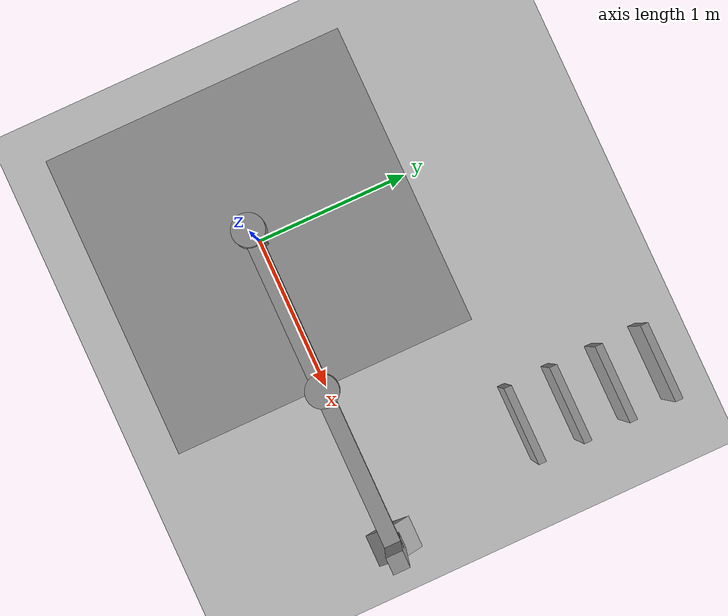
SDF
<sdf version="1.5">
 <world name="default">
  <model name="ground_plane">
   <static>1</static>
   <link name="link">
    <collision name="collision">
     <geometry><plane><normal>0 0 1</normal><size>100 100</size></plane></geometry>
     <surface><friction><ode><mu>100</mu><mu2>50</mu2></ode></friction></surface>
    </collision>
    <visual name="visual">
     <cast_shadows>0</cast_shadows>
     <geometry><plane><normal>0 0 1</normal><size>100 100</size></plane></geometry>
     <material>
      <script><uri>file://media/materials/scripts/gazebo.material</uri><name>Gazebo/Grey</name></script>
     </material>
    </visual>
   </link>
  </model>
  <model name="domino050_0">
   <link name="link">
    <pose>0 0 -0.25 0 -0 0</pose>
    <inertial>
     <mass>0.5</mass>
     <inertia>
      <ixx>0.166667</ixx>
      <ixy>0</ixy>
      <ixz>0</ixz>
      <iyy>0.166667</iyy>
      <iyz>0</iyz>
      <izz>0.166667</izz>
     </inertia>
    </inertial>
    <visual name="visual">
     <geometry><box><size>0.5 0.05 0.5</size></box></geometry>
     <material>
      <script><name>Gazebo/Grey</name><uri>file://media/materials/scripts/gazebo.material</uri></script>
      <shader type="pixel"><normal_map>__default__</normal_map></shader>
      <ambient>0.3 0.3 0.3 1</ambient>
      <diffuse>0.7 0.7 0.7 1</diffuse>
      <specular>0.01 0.01 0.01 1</specular>
      <emissive>0 0 0 1</emissive>
     </material>
    </visual>
    <collision name="collision">
     <geometry><box><size>0.5 0.05 0.5</size></box></geometry>
     <surface>
      <friction><ode><mu>1</mu><mu2>1</mu2><fdir1>0 0 0</fdir1><slip1>0</slip1><slip2>0</slip2></ode></friction>
      <bounce><restitution_coefficient>0</restitution_coefficient><threshold>1e+06</threshold></bounce>
      <contact>
       <collide_without_contact>0</collide_without_contact>
       <collide_without_contact_bitmask>1</collide_without_contact_bitmask>
       <collide_bitmask>1</collide_bitmask>
       <ode>
        <soft_cfm>0</soft_cfm>
        <soft_erp>0.2</soft_erp>
        <kp>1e+13</kp>
        <kd>1</kd>
        <max_vel>0.01</max_vel>
        <min_depth>0</min_depth>
       </ode>
       <bullet>
        <split_impulse>1</split_impulse>
        <split_impulse_penetration_threshold>-0.01</split_impulse_penetration_threshold>
        <soft_cfm>0</soft_cfm>
        <soft_erp>0.2</soft_erp>
        <kp>1e+13</kp>
        <kd>1</kd>
       </bullet>
      </contact>
     </surface>
    </collision>
   </link>
   <static>0</static>
   <pose>1.7 1 0.5 0 -0 0</pose>
  </model>
  <model name="domino050_1">
   <link name="link">
    <pose>0 0 -0.25 0 -0 0</pose>
    <inertial>
     <mass>0.5</mass>
     <inertia>
      <ixx>0.166667</ixx>
      <ixy>0</ixy>
      <ixz>0</ixz>
      <iyy>0.166667</iyy>
      <iyz>0</iyz>
      <izz>0.166667</izz>
     </inertia>
    </inertial>
    <visual name="visual">
     <geometry><box><size>0.5 0.05 0.5</size></box></geometry>
     <material>
      <script><name>Gazebo/Grey</name><uri>file://media/materials/scripts/gazebo.material</uri></script>
      <shader type="pixel"><normal_map>__default__</normal_map></shader>
      <ambient>0.3 0.3 0.3 1</ambient>
      <diffuse>0.7 0.7 0.7 1</diffuse>
      <specular>0.01 0.01 0.01 1</specular>
      <emissive>0 0 0 1</emissive>
     </material>
    </visual>
    <collision name="collision">
     <geometry><box><size>0.5 0.05 0.5</size></box></geometry>
     <surface>
      <friction><ode><mu>1</mu><mu2>1</mu2><fdir1>0 0 0</fdir1><slip1>0</slip1><slip2>0</slip2></ode></friction>
      <bounce><restitution_coefficient>0</restitution_coefficient><threshold>1e+06</threshold></bounce>
      <contact>
       <collide_without_contact>0</collide_without_contact>
       <collide_without_contact_bitmask>1</collide_without_contact_bitmask>
       <collide_bitmask>1</collide_bitmask>
       <ode>
        <soft_cfm>0</soft_cfm>
        <soft_erp>0.2</soft_erp>
        <kp>1e+13</kp>
        <kd>1</kd>
        <max_vel>0.01</max_vel>
        <min_depth>0</min_depth>
       </ode>
       <bullet>
        <split_impulse>1</split_impulse>
        <split_impulse_penetration_threshold>-0.01</split_impulse_penetration_threshold>
        <soft_cfm>0</soft_cfm>
        <soft_erp>0.2</soft_erp>
        <kp>1e+13</kp>
        <kd>1</kd>
       </bullet>
      </contact>
     </surface>
    </collision>
   </link>
   <static>0</static>
   <pose>1.7 1.3 0.5 0 -0 0</pose>
  </model>
  <model name="domino050_1_0">
   <link name="link">
    <pose>0 0 -0.25 0 -0 0</pose>
    <inertial>
     <mass>0.5</mass>
     <inertia>
      <ixx>0.166667</ixx>
      <ixy>0</ixy>
      <ixz>0</ixz>
      <iyy>0.166667</iyy>
      <iyz>0</iyz>
      <izz>0.166667</izz>
     </inertia>
    </inertial>
    <visual name="visual">
     <geometry><box><size>0.5 0.05 0.5</size></box></geometry>
     <material>
      <script><name>Gazebo/Grey</name><uri>file://media/materials/scripts/gazebo.material</uri></script>
      <shader type="pixel"><normal_map>__default__</normal_map></shader>
      <ambient>0.3 0.3 0.3 1</ambient>
      <diffuse>0.7 0.7 0.7 1</diffuse>
      <specular>0.01 0.01 0.01 1</specular>
      <emissive>0 0 0 1</emissive>
     </material>
    </visual>
    <collision name="collision">
     <geometry><box><size>0.5 0.05 0.5</size></box></geometry>
     <surface>
      <friction><ode><mu>1</mu><mu2>1</mu2><fdir1>0 0 0</fdir1><slip1>0</slip1><slip2>0</slip2></ode></friction>
      <bounce><restitution_coefficient>0</restitution_coefficient><threshold>1e+06</threshold></bounce>
      <contact>
       <collide_without_contact>0</collide_without_contact>
       <collide_without_contact_bitmask>1</collide_without_contact_bitmask>
       <collide_bitmask>1</collide_bitmask>
       <ode>
        <soft_cfm>0</soft_cfm>
        <soft_erp>0.2</soft_erp>
        <kp>1e+13</kp>
        <kd>1</kd>
        <max_vel>0.01</max_vel>
        <min_depth>0</min_depth>
       </ode>
       <bullet>
        <split_impulse>1</split_impulse>
        <split_impulse_penetration_threshold>-0.01</split_impulse_penetration_threshold>
        <soft_cfm>0</soft_cfm>
        <soft_erp>0.2</soft_erp>
        <kp>1e+13</kp>
        <kd>1</kd>
       </bullet>
      </contact>
     </surface>
    </collision>
   </link>
   <static>0</static>
   <pose>1.7 1.6 0.5 0 -0 0</pose>
  </model>
  <model name="domino050_2">
   <link name="link">
    <pose>0 0 -0.25 0 -0 0</pose>
    <inertial>
     <mass>0.5</mass>
     <inertia>
      <ixx>0.166667</ixx>
      <ixy>0</ixy>
      <ixz>0</ixz>
      <iyy>0.166667</iyy>
      <iyz>0</iyz>
      <izz>0.166667</izz>
     </inertia>
    </inertial>
    <visual name="visual">
     <geometry><box><size>0.5 0.05 0.5</size></box></geometry>
     <material>
      <script><name>Gazebo/Grey</name><uri>file://media/materials/scripts/gazebo.material</uri></script>
      <shader type="pixel"><normal_map>__default__</normal_map></shader>
      <ambient>0.3 0.3 0.3 1</ambient>
      <diffuse>0.7 0.7 0.7 1</diffuse>
      <specular>0.01 0.01 0.01 1</specular>
      <emissive>0 0 0 1</emissive>
     </material>
    </visual>
    <collision name="collision">
     <geometry><box><size>0.5 0.05 0.5</size></box></geometry>
     <surface>
      <friction><ode><mu>1</mu><mu2>1</mu2><fdir1>0 0 0</fdir1><slip1>0</slip1><slip2>0</slip2></ode></friction>
      <bounce><restitution_coefficient>0</restitution_coefficient><threshold>1e+06</threshold></bounce>
      <contact>
       <collide_without_contact>0</collide_without_contact>
       <collide_without_contact_bitmask>1</collide_without_contact_bitmask>
       <collide_bitmask>1</collide_bitmask>
       <ode>
        <soft_cfm>0</soft_cfm>
        <soft_erp>0.2</soft_erp>
        <kp>1e+13</kp>
        <kd>1</kd>
        <max_vel>0.01</max_vel>
        <min_depth>0</min_depth>
       </ode>
       <bullet>
        <split_impulse>1</split_impulse>
        <split_impulse_penetration_threshold>-0.01</split_impulse_penetration_threshold>
        <soft_cfm>0</soft_cfm>
        <soft_erp>0.2</soft_erp>
        <kp>1e+13</kp>
        <kd>1</kd>
       </bullet>
      </contact>
     </surface>
    </collision>
   </link>
   <static>0</static>
   <pose>1.7 1.9 0.5 0 -0 0</pose>
  </model>
  <model name="simple_arm_01">
   <link name="link_0">
    <pose>-1 0 -0.625 0 -0 0</pose>
    <inertial>
     <mass>50</mass>
     <inertia><ixx>1</ixx><ixy>0</ixy><ixz>0</ixz><iyy>1</iyy><iyz>0</iyz><izz>1</izz></inertia>
    </inertial>
    <visual name="visual">
     <geometry><box><size>2 2 0.1</size></box></geometry>
     <material>
      <lighting>1</lighting>
      <script><uri>file://media/materials/scripts/gazebo.material</uri><name>Gazebo/Grey</name></script>
      <shader type="pixel"><normal_map>__default__</normal_map></shader>
      <ambient>0.3 0.3 0.3 1</ambient>
      <diffuse>0.7 0.7 0.7 1</diffuse>
      <specular>0.01 0.01 0.01 1</specular>
      <emissive>0 0 0 1</emissive>
     </material>
    </visual>
    <collision name="collision">
     <geometry><box><size>2 2 0.1</size></box></geometry>
     <surface>
      <friction><ode><mu>1</mu><mu2>1</mu2><fdir1>0 0 0</fdir1><slip1>0</slip1><slip2>0</slip2></ode></friction>
      <bounce><restitution_coefficient>0</restitution_coefficient><threshold>1e+06</threshold></bounce>
      <contact>
       <collide_without_contact>0</collide_without_contact>
       <collide_without_contact_bitmask>1</collide_without_contact_bitmask>
       <collide_bitmask>1</collide_bitmask>
       <ode>
        <soft_cfm>0</soft_cfm>
        <soft_erp>0.2</soft_erp>
        <kp>1e+13</kp>
        <kd>1</kd>
        <max_vel>0.01</max_vel>
        <min_depth>0</min_depth>
       </ode>
       <bullet>
        <split_impulse>1</split_impulse>
        <split_impulse_penetration_threshold>-0.01</split_impulse_penetration_threshold>
        <soft_cfm>0</soft_cfm>
        <soft_erp>0.2</soft_erp>
        <kp>1e+13</kp>
        <kd>1</kd>
       </bullet>
      </contact>
     </surface>
    </collision>
   </link>
   <link name="link_1">
    <pose>-1 0 -0.175 0 -0 0</pose>
    <inertial>
     <mass>0.1</mass>
     <inertia><ixx>1</ixx><ixy>0</ixy><ixz>0</ixz><iyy>1</iyy><iyz>0</iyz><izz>1</izz></inertia>
    </inertial>
    <visual name="visual">
     <geometry><box><size>0.1 0.1 1</size></box></geometry>
     <material>
      <lighting>1</lighting>
      <script><uri>file://media/materials/scripts/gazebo.material</uri><name>Gazebo/Grey</name></script>
      <shader type="pixel"><normal_map>__default__</normal_map></shader>
      <ambient>0.3 0.3 0.3 1</ambient>
      <diffuse>0.7 0.7 0.7 1</diffuse>
      <specular>0.01 0.01 0.01 1</specular>
      <emissive>0 0 0 1</emissive>
     </material>
    </visual>
    <collision name="collision">
     <geometry><box><size>0.1 0.1 1</size></box></geometry>
     <surface>
      <friction><ode><mu>1</mu><mu2>1</mu2><fdir1>0 0 0</fdir1><slip1>0</slip1><slip2>0</slip2></ode></friction>
      <bounce><restitution_coefficient>0</restitution_coefficient><threshold>1e+06</threshold></bounce>
      <contact>
       <collide_without_contact>0</collide_without_contact>
       <collide_without_contact_bitmask>1</collide_without_contact_bitmask>
       <collide_bitmask>1</collide_bitmask>
       <ode>
        <soft_cfm>0</soft_cfm>
        <soft_erp>0.2</soft_erp>
        <kp>1e+13</kp>
        <kd>1</kd>
        <max_vel>0.01</max_vel>
        <min_depth>0</min_depth>
       </ode>
       <bullet>
        <split_impulse>1</split_impulse>
        <split_impulse_penetration_threshold>-0.01</split_impulse_penetration_threshold>
        <soft_cfm>0</soft_cfm>
        <soft_erp>0.2</soft_erp>
        <kp>1e+13</kp>
        <kd>1</kd>
       </bullet>
      </contact>
     </surface>
    </collision>
   </link>
   <link name="link_1_0">
    <pose>-1 0 0.35 0 -0 0</pose>
    <inertial>
     <mass>0.1</mass>
     <inertia><ixx>1</ixx><ixy>0</ixy><ixz>0</ixz><iyy>1</iyy><iyz>0</iyz><izz>1</izz></inertia>
    </inertial>
    <visual name="visual">
     <geometry><cylinder><radius>0.1</radius><length>0.2</length></cylinder></geometry>
     <material>
      <lighting>1</lighting>
      <script><uri>file://media/materials/scripts/gazebo.material</uri><name>Gazebo/Grey</name></script>
      <shader type="pixel"><normal_map>__default__</normal_map></shader>
      <ambient>0.3 0.3 0.3 1</ambient>
      <diffuse>0.7 0.7 0.7 1</diffuse>
      <specular>0.01 0.01 0.01 1</specular>
      <emissive>0 0 0 1</emissive>
     </material>
    </visual>
    <collision name="collision">
     <geometry><cylinder><radius>0.1</radius><length>0.2</length></cylinder></geometry>
     <surface>
      <friction><ode><mu>1</mu><mu2>1</mu2><fdir1>0 0 0</fdir1><slip1>0</slip1><slip2>0</slip2></ode></friction>
      <bounce><restitution_coefficient>0</restitution_coefficient><threshold>1e+06</threshold></bounce>
      <contact>
       <collide_without_contact>0</collide_without_contact>
       <collide_without_contact_bitmask>1</collide_without_contact_bitmask>
       <collide_bitmask>1</collide_bitmask>
       <ode>
        <soft_cfm>0</soft_cfm>
        <soft_erp>0.2</soft_erp>
        <kp>1e+13</kp>
        <kd>1</kd>
        <max_vel>0.01</max_vel>
        <min_depth>0</min_depth>
       </ode>
       <bullet>
        <split_impulse>1</split_impulse>
        <split_impulse_penetration_threshold>-0.01</split_impulse_penetration_threshold>
        <soft_cfm>0</soft_cfm>
        <soft_erp>0.2</soft_erp>
        <kp>1e+13</kp>
        <kd>1</kd>
       </bullet>
      </contact>
     </surface>
    </collision>
   </link>
   <link name="link_2">
    <pose>-0.5 0 0.325 0 -0 0</pose>
    <inertial>
     <mass>0.1</mass>
     <inertia><ixx>1</ixx><ixy>0</ixy><ixz>0</ixz><iyy>1</iyy><iyz>0</iyz><izz>1</izz></inertia>
    </inertial>
    <visual name="visual">
     <geometry><box><size>1 0.1 0.1</size></box></geometry>
     <material>
      <lighting>1</lighting>
      <script><uri>file://media/materials/scripts/gazebo.material</uri><name>Gazebo/Grey</name></script>
      <shader type="pixel"><normal_map>__default__</normal_map></shader>
      <ambient>0.3 0.3 0.3 1</ambient>
      <diffuse>0.7 0.7 0.7 1</diffuse>
      <specular>0.01 0.01 0.01 1</specular>
      <emissive>0 0 0 1</emissive>
     </material>
    </visual>
    <collision name="collision">
     <geometry><box><size>1 0.1 0.1</size></box></geometry>
     <surface>
      <friction><ode><mu>1</mu><mu2>1</mu2><fdir1>0 0 0</fdir1><slip1>0</slip1><slip2>0</slip2></ode></friction>
      <bounce><restitution_coefficient>0</restitution_coefficient><threshold>1e+06</threshold></bounce>
      <contact>
       <collide_without_contact>0</collide_without_contact>
       <collide_without_contact_bitmask>1</collide_without_contact_bitmask>
       <collide_bitmask>1</collide_bitmask>
       <ode>
        <soft_cfm>0</soft_cfm>
        <soft_erp>0.2</soft_erp>
        <kp>1e+13</kp>
        <kd>1</kd>
        <max_vel>0.01</max_vel>
        <min_depth>0</min_depth>
       </ode>
       <bullet>
        <split_impulse>1</split_impulse>
        <split_impulse_penetration_threshold>-0.01</split_impulse_penetration_threshold>
        <soft_cfm>0</soft_cfm>
        <soft_erp>0.2</soft_erp>
        <kp>1e+13</kp>
        <kd>1</kd>
       </bullet>
      </contact>
     </surface>
    </collision>
   </link>
   <link name="link_2_0">
    <pose>0 0 0.34 0 -0 0</pose>
    <inertial>
     <mass>0.1</mass>
     <inertia><ixx>1</ixx><ixy>0</ixy><ixz>0</ixz><iyy>1</iyy><iyz>0</iyz><izz>1</izz></inertia>
    </inertial>
    <visual name="visual">
     <geometry><cylinder><radius>0.1</radius><length>0.2</length></cylinder></geometry>
     <material>
      <lighting>1</lighting>
      <script><uri>file://media/materials/scripts/gazebo.material</uri><name>Gazebo/Grey</name></script>
      <shader type="pixel"><normal_map>__default__</normal_map></shader>
      <ambient>0.3 0.3 0.3 1</ambient>
      <diffuse>0.7 0.7 0.7 1</diffuse>
      <specular>0.01 0.01 0.01 1</specular>
      <emissive>0 0 0 1</emissive>
     </material>
    </visual>
    <collision name="collision">
     <geometry><cylinder><radius>0.1</radius><length>0.2</length></cylinder></geometry>
     <surface>
      <friction><ode><mu>1</mu><mu2>1</mu2><fdir1>0 0 0</fdir1><slip1>0</slip1><slip2>0</slip2></ode></friction>
      <bounce><restitution_coefficient>0</restitution_coefficient><threshold>1e+06</threshold></bounce>
      <contact>
       <collide_without_contact>0</collide_without_contact>
       <collide_without_contact_bitmask>1</collide_without_contact_bitmask>
       <collide_bitmask>1</collide_bitmask>
       <ode>
        <soft_cfm>0</soft_cfm>
        <soft_erp>0.2</soft_erp>
        <kp>1e+13</kp>
        <kd>1</kd>
        <max_vel>0.01</max_vel>
        <min_depth>0</min_depth>
       </ode>
       <bullet>
        <split_impulse>1</split_impulse>
        <split_impulse_penetration_threshold>-0.01</split_impulse_penetration_threshold>
        <soft_cfm>0</soft_cfm>
        <soft_erp>0.2</soft_erp>
        <kp>1e+13</kp>
        <kd>1</kd>
       </bullet>
      </contact>
     </surface>
    </collision>
   </link>
   <link name="link_3">
    <pose>0.5 0 0.325 0 -0 0</pose>
    <inertial>
     <mass>0.1</mass>
     <inertia><ixx>1</ixx><ixy>0</ixy><ixz>0</ixz><iyy>1</iyy><iyz>0</iyz><izz>1</izz></inertia>
    </inertial>
    <visual name="visual">
     <geometry><box><size>1 0.1 0.1</size></box></geometry>
     <material>
      <lighting>1</lighting>
      <script><uri>file://media/materials/scripts/gazebo.material</uri><name>Gazebo/Grey</name></script>
      <shader type="pixel"><normal_map>__default__</normal_map></shader>
      <ambient>0.3 0.3 0.3 1</ambient>
      <diffuse>0.7 0.7 0.7 1</diffuse>
      <specular>0.01 0.01 0.01 1</specular>
      <emissive>0 0 0 1</emissive>
     </material>
    </visual>
    <collision name="collision">
     <geometry><box><size>1 0.1 0.1</size></box></geometry>
     <surface>
      <friction><ode><mu>1</mu><mu2>1</mu2><fdir1>0 0 0</fdir1><slip1>0</slip1><slip2>0</slip2></ode></friction>
      <bounce><restitution_coefficient>0</restitution_coefficient><threshold>1e+06</threshold></bounce>
      <contact>
       <collide_without_contact>0</collide_without_contact>
       <collide_without_contact_bitmask>1</collide_without_contact_bitmask>
       <collide_bitmask>1</collide_bitmask>
       <ode>
        <soft_cfm>0</soft_cfm>
        <soft_erp>0.2</soft_erp>
        <kp>1e+13</kp>
        <kd>1</kd>
        <max_vel>0.01</max_vel>
        <min_depth>0</min_depth>
       </ode>
       <bullet>
        <split_impulse>1</split_impulse>
        <split_impulse_penetration_threshold>-0.01</split_impulse_penetration_threshold>
        <soft_cfm>0</soft_cfm>
        <soft_erp>0.2</soft_erp>
        <kp>1e+13</kp>
        <kd>1</kd>
       </bullet>
      </contact>
     </surface>
    </collision>
   </link>
   <link name="link_4">
    <pose>1 0 0.325 0 -0 0</pose>
    <inertial>
     <mass>0.1</mass>
     <inertia><ixx>1</ixx><ixy>0</ixy><ixz>0</ixz><iyy>1</iyy><iyz>0</iyz><izz>1</izz></inertia>
    </inertial>
    <visual name="visual">
     <geometry><box><size>0.1 0.1 1</size></box></geometry>
     <material>
      <lighting>1</lighting>
      <script><uri>file://media/materials/scripts/gazebo.material</uri><name>Gazebo/Grey</name></script>
      <shader type="pixel"><normal_map>__default__</normal_map></shader>
      <ambient>0.3 0.3 0.3 1</ambient>
      <diffuse>0.7 0.7 0.7 1</diffuse>
      <specular>0.01 0.01 0.01 1</specular>
      <emissive>0 0 0 1</emissive>
     </material>
    </visual>
    <collision name="collision">
     <geometry><box><size>0.1 0.1 1</size></box></geometry>
     <surface>
      <friction><ode><mu>1</mu><mu2>1</mu2><fdir1>0 0 0</fdir1><slip1>0</slip1><slip2>0</slip2></ode></friction>
      <bounce><restitution_coefficient>0</restitution_coefficient><threshold>1e+06</threshold></bounce>
      <contact>
       <collide_without_contact>0</collide_without_contact>
       <collide_without_contact_bitmask>1</collide_without_contact_bitmask>
       <collide_bitmask>1</collide_bitmask>
       <ode>
        <soft_cfm>0</soft_cfm>
        <soft_erp>0.2</soft_erp>
        <kp>1e+13</kp>
        <kd>1</kd>
        <max_vel>0.01</max_vel>
        <min_depth>0</min_depth>
       </ode>
       <bullet>
        <split_impulse>1</split_impulse>
        <split_impulse_penetration_threshold>-0.01</split_impulse_penetration_threshold>
        <soft_cfm>0</soft_cfm>
        <soft_erp>0.2</soft_erp>
        <kp>1e+13</kp>
        <kd>1</kd>
       </bullet>
      </contact>
     </surface>
    </collision>
   </link>
   <link name="link_5">
    <pose>1 0 -0.175 0.7 -0 0</pose>
    <inertial>
     <mass>1</mass>
     <inertia><ixx>1</ixx><ixy>0</ixy><ixz>0</ixz><iyy>1</iyy><iyz>0</iyz><izz>1</izz></inertia>
    </inertial>
    <visual name="visual">
     <geometry><box><size>0.2 0.2 0.2</size></box></geometry>
     <material>
      <lighting>1</lighting>
      <script><uri>file://media/materials/scripts/gazebo.material</uri><name>Gazebo/Grey</name></script>
      <shader type="pixel"><normal_map>__default__</normal_map></shader>
      <ambient>0.3 0.3 0.3 1</ambient>
      <diffuse>0.7 0.7 0.7 1</diffuse>
      <specular>0.01 0.01 0.01 1</specular>
      <emissive>0 0 0 1</emissive>
     </material>
    </visual>
    <collision name="collision">
     <geometry><box><size>0.2 0.2 0.2</size></box></geometry>
     <surface>
      <friction><ode><mu>1</mu><mu2>1</mu2><fdir1>0 0 0</fdir1><slip1>0</slip1><slip2>0</slip2></ode></friction>
      <bounce><restitution_coefficient>0</restitution_coefficient><threshold>1e+06</threshold></bounce>
      <contact>
       <collide_without_contact>0</collide_without_contact>
       <collide_without_contact_bitmask>1</collide_without_contact_bitmask>
       <collide_bitmask>1</collide_bitmask>
       <ode>
        <soft_cfm>0</soft_cfm>
        <soft_erp>0.2</soft_erp>
        <kp>1e+13</kp>
        <kd>1</kd>
        <max_vel>0.01</max_vel>
        <min_depth>0</min_depth>
       </ode>
       <bullet>
        <split_impulse>1</split_impulse>
        <split_impulse_penetration_threshold>-0.01</split_impulse_penetration_threshold>
        <soft_cfm>0</soft_cfm>
        <soft_erp>0.2</soft_erp>
        <kp>1e+13</kp>
        <kd>1</kd>
       </bullet>
      </contact>
     </surface>
    </collision>
   </link>
   <joint name="arm_elbow_pan" type="revolute">
    <parent>link_2</parent>
    <child>link_3</child>
    <pose>-0.5 0 0 0 -0 0</pose>
    <axis>
     <xyz>0 0 1</xyz>
     <use_parent_model_frame>0</use_parent_model_frame>
     <limit>
      <lower>-1.79769e+308</lower>
      <upper>1.79769e+308</upper>
      <effort>-1</effort>
      <velocity>-1</velocity>
     </limit>
     <dynamics>
      <spring_reference>0</spring_reference>
      <spring_stiffness>0</spring_stiffness>
      <damping>0</damping>
      <friction>0</friction>
     </dynamics>
    </axis>
    <physics>
     <ode>
      <cfm>0</cfm>
      <bounce>0</bounce>
      <velocity>0</velocity>
      <fudge_factor>0</fudge_factor>
      <limit><cfm>0</cfm><erp>0.2</erp></limit>
      <suspension><cfm>0</cfm><erp>0.2</erp></suspension>
     </ode>
    </physics>
   </joint>
   <joint name="arm_shoulder_pan" type="revolute">
    <parent>link_1</parent>
    <child>link_2</child>
    <pose>-0.5 0 0 0 -0 0</pose>
    <axis>
     <xyz>0 0 1</xyz>
     <use_parent_model_frame>0</use_parent_model_frame>
     <limit>
      <lower>-1.79769e+308</lower>
      <upper>1.79769e+308</upper>
      <effort>-1</effort>
      <velocity>-1</velocity>
     </limit>
     <dynamics>
      <spring_reference>0</spring_reference>
      <spring_stiffness>0</spring_stiffness>
      <damping>0</damping>
      <friction>0</friction>
     </dynamics>
    </axis>
    <physics>
     <ode>
      <cfm>0</cfm>
      <bounce>0</bounce>
      <velocity>0</velocity>
      <fudge_factor>0</fudge_factor>
      <limit><cfm>0</cfm><erp>0.2</erp></limit>
      <suspension><cfm>0</cfm><erp>0.2</erp></suspension>
     </ode>
    </physics>
   </joint>
   <joint name="fixed0" type="fixed">
    <parent>link_0</parent>
    <child>link_1</child>
    <physics>
     <ode>
      <cfm>0</cfm>
      <bounce>0</bounce>
      <velocity>0</velocity>
      <fudge_factor>0</fudge_factor>
      <limit><cfm>0</cfm><erp>0.2</erp></limit>
      <suspension><cfm>0</cfm><erp>0.2</erp></suspension>
     </ode>
    </physics>
   </joint>
   <joint name="fixed1" type="fixed">
    <parent>link_4</parent>
    <child>link_5</child>
    <physics>
     <ode>
      <cfm>0</cfm>
      <bounce>0</bounce>
      <velocity>0</velocity>
      <fudge_factor>0</fudge_factor>
      <limit><cfm>0</cfm><erp>0.2</erp></limit>
      <suspension><cfm>0</cfm><erp>0.2</erp></suspension>
     </ode>
    </physics>
   </joint>
   <joint name="fixed2" type="fixed">
    <parent>link_3</parent>
    <child>link_4</child>
    <physics>
     <ode>
      <cfm>0</cfm>
      <bounce>0</bounce>
      <velocity>0</velocity>
      <fudge_factor>0</fudge_factor>
      <limit><cfm>0</cfm><erp>0.2</erp></limit>
      <suspension><cfm>0</cfm><erp>0.2</erp></suspension>
     </ode>
    </physics>
   </joint>
   <joint name="fixed3" type="fixed">
    <parent>link_0</parent>
    <child>link_1_0</child>
    <physics>
     <ode>
      <cfm>0</cfm>
      <bounce>0</bounce>
      <velocity>0</velocity>
      <fudge_factor>0</fudge_factor>
      <limit><cfm>0</cfm><erp>0.2</erp></limit>
      <suspension><cfm>0</cfm><erp>0.2</erp></suspension>
     </ode>
    </physics>
   </joint>
   <joint name="fixed4" type="fixed">
    <parent>link_2</parent>
    <child>link_2_0</child>
    <physics>
     <ode>
      <cfm>0</cfm>
      <bounce>0</bounce>
      <velocity>0</velocity>
      <fudge_factor>0</fudge_factor>
      <limit><cfm>0</cfm><erp>0.2</erp></limit>
      <suspension><cfm>0</cfm><erp>0.2</erp></suspension>
     </ode>
    </physics>
   </joint>
   <static>0</static>
   <pose>1 0 0.68 0 -0 0</pose>
  </model>
 </world>
</sdf>
